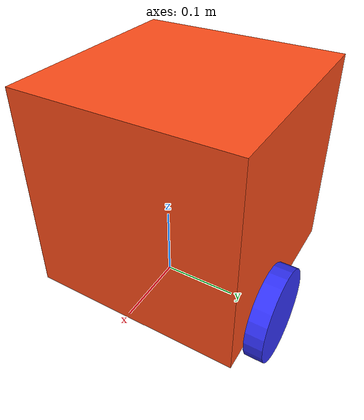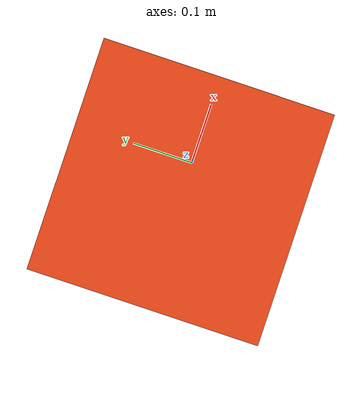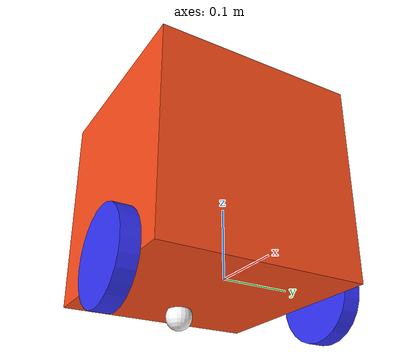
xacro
<?xml version="1.0"?>
<robot name="hexapod" xmlns:xacro="http://www.ros.org/wiki/xacro" >

    <!-- Updated dimensions for the robot in meters (30 cm = 0.30 m) -->
    <xacro:property name="chassis_length" value="0.30"/>
    <xacro:property name="chassis_width" value="0.30"/>
    <xacro:property name="chassis_height" value="0.30"/>
    <xacro:property name="chassis_mass" value="1.0"/>
    <xacro:property name="wheel_radius" value="0.066"/> <!-- Proportional increase from 0.033m -->
    <xacro:property name="wheel_thickness" value="0.026"/>
    <xacro:property name="wheel_mass" value="0.05"/>

    <!-- Updated wheel offset values (in meters) based on new dimensions -->
    <xacro:property name="wheel_offset_x" value="0.20"/> <!-- Adjusted based on new chassis length -->
    <xacro:property name="wheel_offset_y" value="0.163"/> <!-- Adjusted based on new chassis width -->
    <xacro:property name="wheel_offset_z" value="0.01"/>

    <!-- Proportional increase for caster wheel -->
    <xacro:property name="caster_wheel_radius" value="0.02"/> <!-- Proportional increase from 0.01m -->
    <xacro:property name="caster_wheel_mass" value="0.01"/>
    <xacro:property name="caster_wheel_offset_x" value="0.075"/>
    <xacro:property name="caster_wheel_offset_z" value="${wheel_offset_z - wheel_radius + caster_wheel_radius + 0.025}"/>

    <material name="white">
        <color rgba="1 1 1 1" />
    </material>

    <material name="orange">
        <color rgba="1 0.3 0.1 1"/>
    </material>

    <material name="blue">
        <color rgba="0.2 0.2 1 1"/>
    </material>

    <material name="black">
        <color rgba="0 0 0 1"/>
    </material>

    <material name="red">
        <color rgba="1 0 0 1"/>
    </material>

    <!-- BASE LINK -->

    <link name="base_link">
    </link>

    <!-- BASE_FOOTPRINT LINK -->

    <joint name="base_footprint_joint" type="fixed">
        <parent link="base_link"/>
        <child link="base_footprint"/>
        <origin xyz="0 0 0" rpy="0 0 0"/>
    </joint>

    <link name="base_footprint">
    </link>

    <!-- CHASSIS LINK -->

    <joint name="chassis_joint" type="fixed">
        <parent link="base_link"/>
        <child link="chassis"/>
        <origin xyz="${-wheel_offset_x} 0 ${-wheel_offset_z}"/>
    </joint>

    <link name="chassis">
        <visual>
            <origin xyz="${chassis_length/2} 0 ${chassis_height/2}"/>
            <geometry>
                <box size="${chassis_length} ${chassis_width} ${chassis_height}"/>
            </geometry>
            <material name="orange"/>
        </visual>
        <collision>
            <origin xyz="${chassis_length/2} 0 ${chassis_height/2}"/>
            <geometry>
                <box size="${chassis_length} ${chassis_width} ${chassis_height}"/>
            </geometry>
        </collision>
        <!-- Inertial tag for chassis -->
        <inertial>
            <mass value="${chassis_mass}"/>
            <inertia ixx="0.02" ixy="0.0" ixz="0.0" iyy="0.02" iyz="0.0" izz="0.02"/>
            <origin xyz="0 0 ${chassis_height/2}"/>
        </inertial>
    </link>

    <gazebo reference="chassis">
        <material>Gazebo/Orange</material>
    </gazebo>

    <!-- LEFT WHEEL LINK -->

    <joint name="left_wheel_joint" type="continuous">
        <parent link="base_link"/>
        <child link="left_wheel"/>
        <origin xyz="0 ${wheel_offset_y} 0" rpy="-${pi/2} 0 0" />
        <axis xyz="0 0 1"/>
    </joint>

    <link name="left_wheel">
        <visual>
            <geometry>
                <cylinder radius="${wheel_radius}" length="${wheel_thickness}"/>
            </geometry>
            <material name="blue"/>
        </visual>
        <collision>
            <geometry>
                <sphere radius="${wheel_radius}"/>
            </geometry>
        </collision>
        <!-- Inertial tag for left wheel -->
        <inertial>
            <mass value="${wheel_mass}"/>
            <inertia ixx="0.01" ixy="0.0" ixz="0.0" iyy="0.01" iyz="0.0" izz="0.01"/>
            <origin xyz="0 0 ${wheel_radius}"/>
        </inertial>
    </link>

    <gazebo reference="left_wheel">
        <material>Gazebo/Blue</material>
    </gazebo>

    <!-- RIGHT WHEEL LINK -->

    <joint name="right_wheel_joint" type="continuous">
        <parent link="base_link"/>
        <child link="right_wheel"/>
        <origin xyz="0 ${-wheel_offset_y} 0" rpy="${pi/2} 0 0" />
        <axis xyz="0 0 -1"/>
    </joint>

    <link name="right_wheel">
        <visual>
            <geometry>
                <cylinder radius="${wheel_radius}" length="${wheel_thickness}"/>
            </geometry>
            <material name="blue"/>
        </visual>
        <collision>
            <geometry>
                <sphere radius="${wheel_radius}"/>
            </geometry>
        </collision>
        <!-- Inertial tag for right wheel -->
        <inertial>
            <mass value="${wheel_mass}"/>
            <inertia ixx="0.01" ixy="0.0" ixz="0.0" iyy="0.01" iyz="0.0" izz="0.01"/>
            <origin xyz="0 0 ${wheel_radius}"/>
        </inertial>
    </link>

    <gazebo reference="right_wheel">
        <material>Gazebo/Blue</material>
    </gazebo>

    <!-- CASTER WHEEL LINK -->

    <joint name="caster_wheel_joint" type="fixed">
        <parent link="chassis"/>
        <child link="caster_wheel"/>
        <origin xyz="${caster_wheel_offset_x} 0 ${caster_wheel_offset_z}"/>
    </joint>

    <link name="caster_wheel">
        <visual>
            <geometry>
                <sphere radius="${caster_wheel_radius}"/>
            </geometry>
            <material name="white"/>
        </visual>
        <collision>
            <geometry>
                <sphere radius="${caster_wheel_radius}"/>
            </geometry>
        </collision>
        <!-- Inertial tag for caster wheel -->
        <inertial>
            <mass value="${caster_wheel_mass}"/>
            <inertia ixx="0.005" ixy="0.0" ixz="0.0" iyy="0.005" iyz="0.0" izz="0.005"/>
            <origin xyz="0 0 ${caster_wheel_radius}"/>
        </inertial>
    </link>

    <gazebo reference="caster_wheel">
        <material>Gazebo/White</material>
        <mu1 value="0.9"/> <!-- Increased friction coefficient -->
        <mu2 value="0.9"/> <!-- Increased friction coefficient -->
    </gazebo>

</robot>
